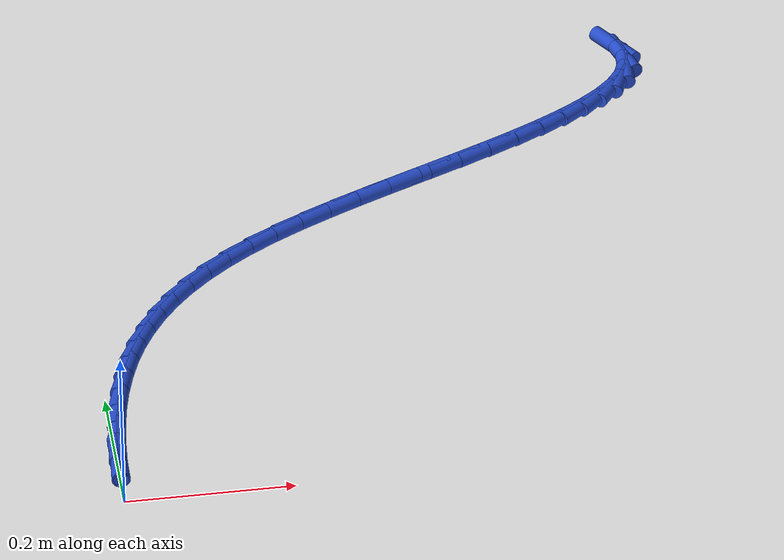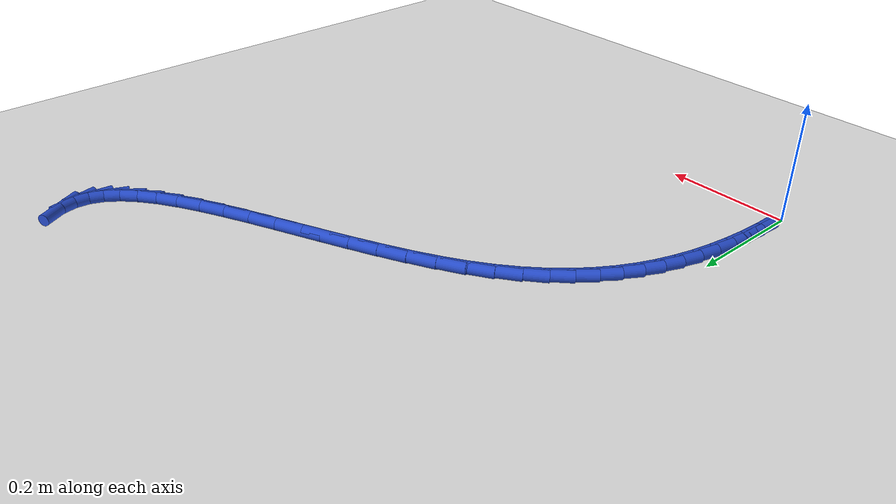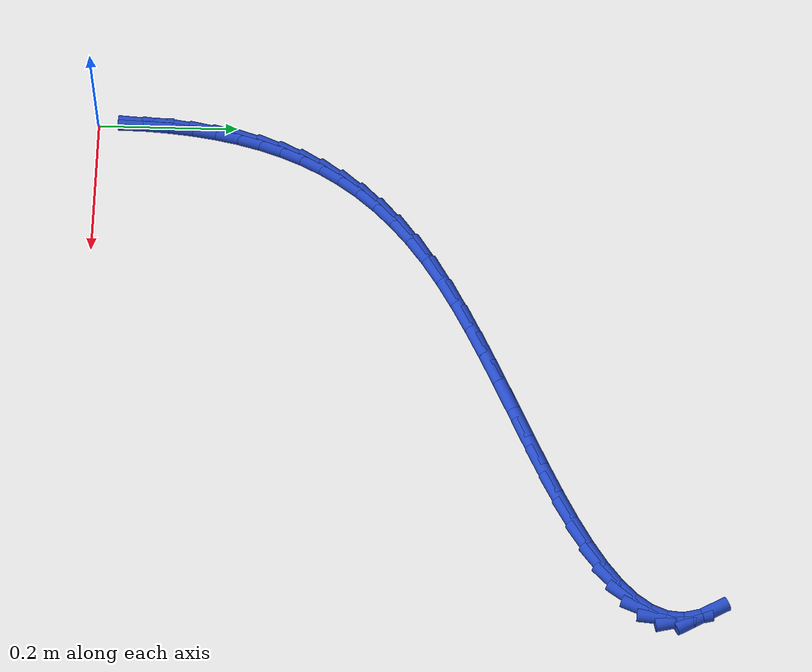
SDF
<sdf version="1.6">
 <world name="default">
  <model name="ground_plane">
   <static>1</static>
   <link name="link">
    <collision name="collision">
     <geometry><plane><normal>0 0 1</normal><size>100 100</size></plane></geometry>
     <surface><friction><ode><mu>100</mu><mu2>50</mu2></ode></friction></surface>
    </collision>
    <visual name="visual">
     <cast_shadows>0</cast_shadows>
     <geometry><plane><normal>0 0 1</normal><size>100 100</size></plane></geometry>
     <material>
      <script><uri>file://media/materials/scripts/gazebo.material</uri><name>Gazebo/WhiteGlow</name></script>
     </material>
    </visual>
   </link>
  </model>
  <model name="line">
   <link name="link_2">
    <pose>0.0013037590218697701 0.06878323872105235 0.01 0 1.57 1.4997511849442675</pose>
    <collision name="collision">
     <geometry><cylinder><radius>0.01</radius><length>0.08</length></cylinder></geometry>
    </collision>
    <visual name="visual">
     <material>
      <script><name>Gazebo/Blue</name><uri>file://media/materials/scripts/gazebo.material</uri></script>
     </material>
     <geometry><cylinder><radius>0.01</radius><length>0.08</length></cylinder></geometry>
    </visual>
   </link>
   <link name="link_3">
    <pose>0.003742863435921745 0.10305721224414889 0.01 0 1.57 1.4595072442846933</pose>
    <collision name="collision">
     <geometry><cylinder><radius>0.01</radius><length>0.08</length></cylinder></geometry>
    </collision>
    <visual name="visual">
     <material>
      <script><name>Gazebo/Blue</name><uri>file://media/materials/scripts/gazebo.material</uri></script>
     </material>
     <geometry><cylinder><radius>0.01</radius><length>0.08</length></cylinder></geometry>
    </visual>
   </link>
   <link name="link_4">
    <pose>0.0075364463186585965 0.13700401410016358 0.01 0 1.57 1.414445395928384</pose>
    <collision name="collision">
     <geometry><cylinder><radius>0.01</radius><length>0.08</length></cylinder></geometry>
    </collision>
    <visual name="visual">
     <material>
      <script><name>Gazebo/Blue</name><uri>file://media/materials/scripts/gazebo.material</uri></script>
     </material>
     <geometry><cylinder><radius>0.01</radius><length>0.08</length></cylinder></geometry>
    </visual>
   </link>
   <link name="link_5">
    <pose>0.012806754070035432 0.17043708845749989 0.01 0 1.57 1.3639389401800361</pose>
    <collision name="collision">
     <geometry><cylinder><radius>0.01</radius><length>0.08</length></cylinder></geometry>
    </collision>
    <visual name="visual">
     <material>
      <script><name>Gazebo/Blue</name><uri>file://media/materials/scripts/gazebo.material</uri></script>
     </material>
     <geometry><cylinder><radius>0.01</radius><length>0.08</length></cylinder></geometry>
    </visual>
   </link>
   <link name="link_6">
    <pose>0.01967603309000738 0.20316987948456136 0.01 0 1.57 1.3073162257289797</pose>
    <collision name="collision">
     <geometry><cylinder><radius>0.01</radius><length>0.08</length></cylinder></geometry>
    </collision>
    <visual name="visual">
     <material>
      <script><name>Gazebo/Blue</name><uri>file://media/materials/scripts/gazebo.material</uri></script>
     </material>
     <geometry><cylinder><radius>0.01</radius><length>0.08</length></cylinder></geometry>
    </visual>
   </link>
   <link name="link_7">
    <pose>0.028266549742168974 0.23501593110529378 0.01 0 1.57 1.244111412398534</pose>
    <collision name="collision">
     <geometry><cylinder><radius>0.01</radius><length>0.08</length></cylinder></geometry>
    </collision>
    <visual name="visual">
     <material>
      <script><name>Gazebo/Blue</name><uri>file://media/materials/scripts/gazebo.material</uri></script>
     </material>
     <geometry><cylinder><radius>0.01</radius><length>0.08</length></cylinder></geometry>
    </visual>
   </link>
   <link name="link_8">
    <pose>0.038711257254925004 0.2658421880274798 0.01 0 1.57 1.174938423745464</pose>
    <collision name="collision">
     <geometry><cylinder><radius>0.01</radius><length>0.08</length></cylinder></geometry>
    </collision>
    <visual name="visual">
     <material>
      <script><name>Gazebo/Blue</name><uri>file://media/materials/scripts/gazebo.material</uri></script>
     </material>
     <geometry><cylinder><radius>0.01</radius><length>0.08</length></cylinder></geometry>
    </visual>
   </link>
   <link name="link_9">
    <pose>0.05117137788096851 0.29565685135936204 0.01 0 1.57 1.1009478152931664</pose>
    <collision name="collision">
     <geometry><cylinder><radius>0.01</radius><length>0.08</length></cylinder></geometry>
    </collision>
    <visual name="visual">
     <material>
      <script><name>Gazebo/Blue</name><uri>file://media/materials/scripts/gazebo.material</uri></script>
     </material>
     <geometry><cylinder><radius>0.01</radius><length>0.08</length></cylinder></geometry>
    </visual>
   </link>
   <link name="link_10">
    <pose>0.06581275455062231 0.3244912110955562 0.01 0 1.57 1.0236206646281967</pose>
    <collision name="collision">
     <geometry><cylinder><radius>0.01</radius><length>0.08</length></cylinder></geometry>
    </collision>
    <visual name="visual">
     <material>
      <script><name>Gazebo/Blue</name><uri>file://media/materials/scripts/gazebo.material</uri></script>
     </material>
     <geometry><cylinder><radius>0.01</radius><length>0.08</length></cylinder></geometry>
    </visual>
   </link>
   <link name="link_11">
    <pose>0.08280123019420928 0.35237655723067796 0.01 0 1.57 0.9447071433611985</pose>
    <collision name="collision">
     <geometry><cylinder><radius>0.01</radius><length>0.08</length></cylinder></geometry>
    </collision>
    <visual name="visual">
     <material>
      <script><name>Gazebo/Blue</name><uri>file://media/materials/scripts/gazebo.material</uri></script>
     </material>
     <geometry><cylinder><radius>0.01</radius><length>0.08</length></cylinder></geometry>
    </visual>
   </link>
   <link name="link_12">
    <pose>0.10230264774205214 0.379344179759343 0.01 0 1.57 0.8660531925168482</pose>
    <collision name="collision">
     <geometry><cylinder><radius>0.01</radius><length>0.08</length></cylinder></geometry>
    </collision>
    <visual name="visual">
     <material>
      <script><name>Gazebo/Blue</name><uri>file://media/materials/scripts/gazebo.material</uri></script>
     </material>
     <geometry><cylinder><radius>0.01</radius><length>0.08</length></cylinder></geometry>
    </visual>
   </link>
   <link name="link_13">
    <pose>0.12448285012447369 0.40542536867616685 0.01 0 1.57 0.7894023538734826</pose>
    <collision name="collision">
     <geometry><cylinder><radius>0.01</radius><length>0.08</length></cylinder></geometry>
    </collision>
    <visual name="visual">
     <material>
      <script><name>Gazebo/Blue</name><uri>file://media/materials/scripts/gazebo.material</uri></script>
     </material>
     <geometry><cylinder><radius>0.01</radius><length>0.08</length></cylinder></geometry>
    </visual>
   </link>
   <link name="link_14">
    <pose>0.1495076802717968 0.43065141397576523 0.01 0 1.57 0.7162241377673275</pose>
    <collision name="collision">
     <geometry><cylinder><radius>0.01</radius><length>0.08</length></cylinder></geometry>
    </collision>
    <visual name="visual">
     <material>
      <script><name>Gazebo/Blue</name><uri>file://media/materials/scripts/gazebo.material</uri></script>
     </material>
     <geometry><cylinder><radius>0.01</radius><length>0.08</length></cylinder></geometry>
    </visual>
   </link>
   <link name="link_15">
    <pose>0.1775429811143442 0.4550536056527536 0.01 0 1.57 0.6476082398425609</pose>
    <collision name="collision">
     <geometry><cylinder><radius>0.01</radius><length>0.08</length></cylinder></geometry>
    </collision>
    <visual name="visual">
     <material>
      <script><name>Gazebo/Blue</name><uri>file://media/materials/scripts/gazebo.material</uri></script>
     </material>
     <geometry><cylinder><radius>0.01</radius><length>0.08</length></cylinder></geometry>
    </visual>
   </link>
   <link name="link_16">
    <pose>0.20875459558243875 0.4786632337017478 0.01 0 1.57 0.5847093999354936</pose>
    <collision name="collision">
     <geometry><cylinder><radius>0.01</radius><length>0.08</length></cylinder></geometry>
    </collision>
    <visual name="visual">
     <material>
      <script><name>Gazebo/Blue</name><uri>file://media/materials/scripts/gazebo.material</uri></script>
     </material>
     <geometry><cylinder><radius>0.01</radius><length>0.08</length></cylinder></geometry>
    </visual>
   </link>
   <link name="link_17">
    <pose>0.2432766785114157 0.5015140984469678 0.01 0 1.57 0.5336262199802972</pose>
    <collision name="collision">
     <geometry><cylinder><radius>0.01</radius><length>0.08</length></cylinder></geometry>
    </collision>
    <visual name="visual">
     <material>
      <script><name>Gazebo/Blue</name><uri>file://media/materials/scripts/gazebo.material</uri></script>
     </material>
     <geometry><cylinder><radius>0.01</radius><length>0.08</length></cylinder></geometry>
    </visual>
   </link>
   <link name="link_18">
    <pose>0.2807885145715389 0.5236760350087271 0.01 0 1.57 0.4962218686180734</pose>
    <collision name="collision">
     <geometry><cylinder><radius>0.01</radius><length>0.08</length></cylinder></geometry>
    </collision>
    <visual name="visual">
     <material>
      <script><name>Gazebo/Blue</name><uri>file://media/materials/scripts/gazebo.material</uri></script>
     </material>
     <geometry><cylinder><radius>0.01</radius><length>0.08</length></cylinder></geometry>
    </visual>
   </link>
   <link name="link_19">
    <pose>0.3206288333004343 0.5452458572711841 0.01 0 1.57 0.4699030756825216</pose>
    <collision name="collision">
     <geometry><cylinder><radius>0.01</radius><length>0.08</length></cylinder></geometry>
    </collision>
    <visual name="visual">
     <material>
      <script><name>Gazebo/Blue</name><uri>file://media/materials/scripts/gazebo.material</uri></script>
     </material>
     <geometry><cylinder><radius>0.01</radius><length>0.08</length></cylinder></geometry>
    </visual>
   </link>
   <link name="link_20">
    <pose>0.36212814123439224 0.5663210305443306 0.01 0 1.57 0.45292616012136616</pose>
    <collision name="collision">
     <geometry><cylinder><radius>0.01</radius><length>0.08</length></cylinder></geometry>
    </collision>
    <visual name="visual">
     <material>
      <script><name>Gazebo/Blue</name><uri>file://media/materials/scripts/gazebo.material</uri></script>
     </material>
     <geometry><cylinder><radius>0.01</radius><length>0.08</length></cylinder></geometry>
    </visual>
   </link>
   <link name="link_21">
    <pose>0.40461694490970385 0.5869990201381584 0.01 0 1.57 0.44428829944512876</pose>
    <collision name="collision">
     <geometry><cylinder><radius>0.01</radius><length>0.08</length></cylinder></geometry>
    </collision>
    <visual name="visual">
     <material>
      <script><name>Gazebo/Blue</name><uri>file://media/materials/scripts/gazebo.material</uri></script>
     </material>
     <geometry><cylinder><radius>0.01</radius><length>0.08</length></cylinder></geometry>
    </visual>
   </link>
   <link name="link_22">
    <pose>0.4474257508626597 0.6073772913626589 0.01 0 1.57 0.44359905145111744</pose>
    <collision name="collision">
     <geometry><cylinder><radius>0.01</radius><length>0.08</length></cylinder></geometry>
    </collision>
    <visual name="visual">
     <material>
      <script><name>Gazebo/Blue</name><uri>file://media/materials/scripts/gazebo.material</uri></script>
     </material>
     <geometry><cylinder><radius>0.01</radius><length>0.08</length></cylinder></geometry>
    </visual>
   </link>
   <link name="link_23">
    <pose>0.48988506562955025 0.627553309527824 0.01 0 1.57 0.4510417158108458</pose>
    <collision name="collision">
     <geometry><cylinder><radius>0.01</radius><length>0.08</length></cylinder></geometry>
    </collision>
    <visual name="visual">
     <material>
      <script><name>Gazebo/Blue</name><uri>file://media/materials/scripts/gazebo.material</uri></script>
     </material>
     <geometry><cylinder><radius>0.01</radius><length>0.08</length></cylinder></geometry>
    </visual>
   </link>
   <link name="link_24">
    <pose>0.5313253957466668 0.6476245399436457 0.01 0 1.57 0.4674235573740675</pose>
    <collision name="collision">
     <geometry><cylinder><radius>0.01</radius><length>0.08</length></cylinder></geometry>
    </collision>
    <visual name="visual">
     <material>
      <script><name>Gazebo/Blue</name><uri>file://media/materials/scripts/gazebo.material</uri></script>
     </material>
     <geometry><cylinder><radius>0.01</radius><length>0.08</length></cylinder></geometry>
    </visual>
   </link>
   <link name="link_25">
    <pose>0.5710772477502997 0.667688447920115 0.01 0 1.57 0.49433278869625613</pose>
    <collision name="collision">
     <geometry><cylinder><radius>0.01</radius><length>0.08</length></cylinder></geometry>
    </collision>
    <visual name="visual">
     <material>
      <script><name>Gazebo/Blue</name><uri>file://media/materials/scripts/gazebo.material</uri></script>
     </material>
     <geometry><cylinder><radius>0.01</radius><length>0.08</length></cylinder></geometry>
    </visual>
   </link>
   <link name="link_26">
    <pose>0.6084711281767397 0.6878424987672243 0.01 0 1.57 0.5344461597575991</pose>
    <collision name="collision">
     <geometry><cylinder><radius>0.01</radius><length>0.08</length></cylinder></geometry>
    </collision>
    <visual name="visual">
     <material>
      <script><name>Gazebo/Blue</name><uri>file://media/materials/scripts/gazebo.material</uri></script>
     </material>
     <geometry><cylinder><radius>0.01</radius><length>0.08</length></cylinder></geometry>
    </visual>
   </link>
   <link name="link_27">
    <pose>0.6428375435622776 0.7081841577949649 0.01 0 1.57 0.5920643877317526</pose>
    <collision name="collision">
     <geometry><cylinder><radius>0.01</radius><length>0.08</length></cylinder></geometry>
    </collision>
    <visual name="visual">
     <material>
      <script><name>Gazebo/Blue</name><uri>file://media/materials/scripts/gazebo.material</uri></script>
     </material>
     <geometry><cylinder><radius>0.01</radius><length>0.08</length></cylinder></geometry>
    </visual>
   </link>
   <link name="link_28">
    <pose>0.6735070004432042 0.7288108903133287 0.01 0 1.57 0.6739723901410127</pose>
    <collision name="collision">
     <geometry><cylinder><radius>0.01</radius><length>0.08</length></cylinder></geometry>
    </collision>
    <visual name="visual">
     <material>
      <script><name>Gazebo/Blue</name><uri>file://media/materials/scripts/gazebo.material</uri></script>
     </material>
     <geometry><cylinder><radius>0.01</radius><length>0.08</length></cylinder></geometry>
    </visual>
   </link>
   <link name="link_29">
    <pose>0.69981000535581 0.7498201616323072 0.01 0 1.57 0.7905953803410706</pose>
    <collision name="collision">
     <geometry><cylinder><radius>0.01</radius><length>0.08</length></cylinder></geometry>
    </collision>
    <visual name="visual">
     <material>
      <script><name>Gazebo/Blue</name><uri>file://media/materials/scripts/gazebo.material</uri></script>
     </material>
     <geometry><cylinder><radius>0.01</radius><length>0.08</length></cylinder></geometry>
    </visual>
   </link>
   <link name="link_30">
    <pose>0.7210770648363862 0.7713094370618925 0.01 0 1.57 0.9565843446514154</pose>
    <collision name="collision">
     <geometry><cylinder><radius>0.01</radius><length>0.08</length></cylinder></geometry>
    </collision>
    <visual name="visual">
     <material>
      <script><name>Gazebo/Blue</name><uri>file://media/materials/scripts/gazebo.material</uri></script>
     </material>
     <geometry><cylinder><radius>0.01</radius><length>0.08</length></cylinder></geometry>
    </visual>
   </link>
   <link name="link_31">
    <pose>0.7366386854212231 0.7933761819120759 0.01 0 1.57 1.186882362030653</pose>
    <collision name="collision">
     <geometry><cylinder><radius>0.01</radius><length>0.08</length></cylinder></geometry>
    </collision>
    <visual name="visual">
     <material>
      <script><name>Gazebo/Blue</name><uri>file://media/materials/scripts/gazebo.material</uri></script>
     </material>
     <geometry><cylinder><radius>0.01</radius><length>0.08</length></cylinder></geometry>
    </visual>
   </link>
   <link name="link_32">
    <pose>0.7458253736466116 0.8161178614928493 0.01 0 1.57 1.4799416260970273</pose>
    <collision name="collision">
     <geometry><cylinder><radius>0.01</radius><length>0.08</length></cylinder></geometry>
    </collision>
    <visual name="visual">
     <material>
      <script><name>Gazebo/Blue</name><uri>file://media/materials/scripts/gazebo.material</uri></script>
     </material>
     <geometry><cylinder><radius>0.01</radius><length>0.08</length></cylinder></geometry>
    </visual>
   </link>
   <link name="link_33">
    <pose>0.7479676360488423 0.8396319411142042 0.01 0 1.57 -1.346155946811317</pose>
    <collision name="collision">
     <geometry><cylinder><radius>0.01</radius><length>0.08</length></cylinder></geometry>
    </collision>
    <visual name="visual">
     <material>
      <script><name>Gazebo/Blue</name><uri>file://media/materials/scripts/gazebo.material</uri></script>
     </material>
     <geometry><cylinder><radius>0.01</radius><length>0.08</length></cylinder></geometry>
    </visual>
   </link>
   <link name="link_34">
    <pose>0.7423959791642063 0.864015886086133 0.01 0 1.57 -1.0675937676510234</pose>
    <collision name="collision">
     <geometry><cylinder><radius>0.01</radius><length>0.08</length></cylinder></geometry>
    </collision>
    <visual name="visual">
     <material>
      <script><name>Gazebo/Blue</name><uri>file://media/materials/scripts/gazebo.material</uri></script>
     </material>
     <geometry><cylinder><radius>0.01</radius><length>0.08</length></cylinder></geometry>
    </visual>
   </link>
   <link name="link_272">
    <pose>0.0011196702497691864 0.06905437323895658 0.01 0 1.57 1.5545834196227333</pose>
    <collision name="collision">
     <geometry><cylinder><radius>0.01</radius><length>0.08</length></cylinder></geometry>
    </collision>
    <visual name="visual">
     <material>
      <script><name>Gazebo/Blue</name><uri>file://media/materials/scripts/gazebo.material</uri></script>
     </material>
     <geometry><cylinder><radius>0.01</radius><length>0.08</length></cylinder></geometry>
    </visual>
   </link>
  </model>
 </world>
</sdf>
